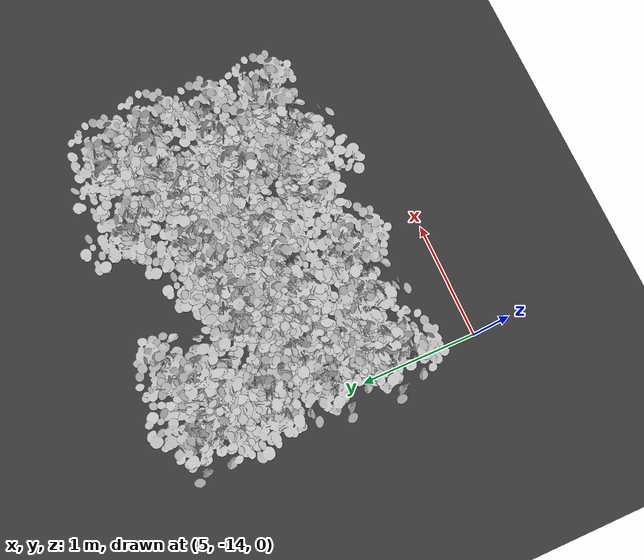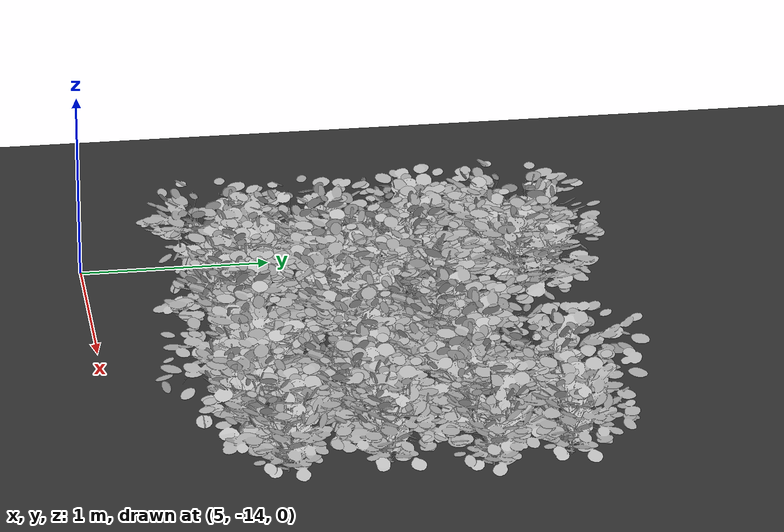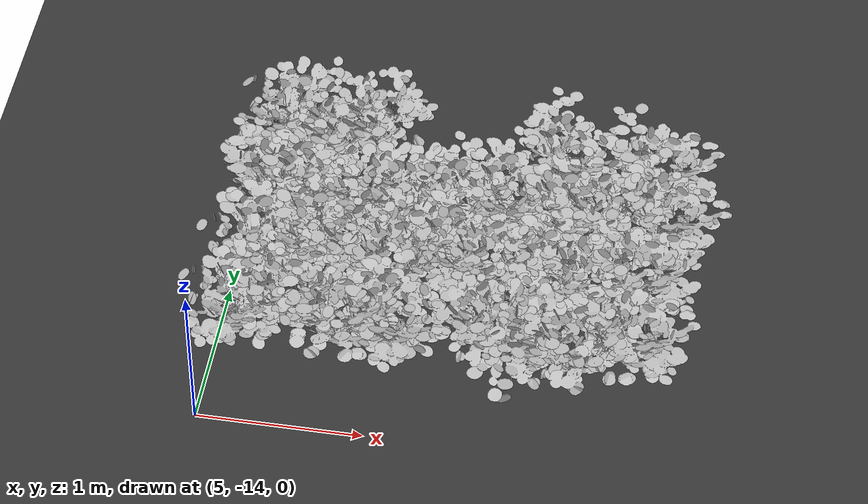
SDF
<sdf version="1.7">
 <world name="default">
  <model name="ground_plane">
   <static>1</static>
   <link name="link">
    <collision name="collision">
     <geometry><plane><normal>0 0 1</normal><size>100 100</size></plane></geometry>
     <surface>
      <contact><collide_bitmask>65535</collide_bitmask></contact>
      <friction><ode><mu>100</mu><mu2>50</mu2></ode></friction>
     </surface>
    </collision>
    <visual name="visual">
     <cast_shadows>0</cast_shadows>
     <geometry><plane><normal>0 0 1</normal><size>100 100</size></plane></geometry>
     <material>
      <ambient>0.2 0.2 0.2 1.0</ambient>
      <diffuse>0.2 0.2 0.2 1.0</diffuse>
      <specular>0.2 0.2 0.2 1.0</specular>
      <emissive>0.2 0.2 0.2 1.0</emissive>
     </material>
    </visual>
   </link>
  </model>
  <model name="ground">
   <pose>5 -0.5 0.01  3.141592654 0 0</pose>
   <static>true</static>
   <link name="body">
    <visual name="visual">
     <cast_shadows>0</cast_shadows>
     <geometry>
      <mesh><uri>file:///home/ifcosta/final_ws/src/cnn_line/worlds/models/ground.obj</uri></mesh>
     </geometry>
    </visual>
   </link>
  </model>
  <model name="plt_40017">
   <pose>5.1 -13.3 0.0129 0.0 0.0 -1.0196</pose>
   <static>true</static>
   <link name="body">
    <visual name="visual">
     <geometry>
      <mesh><uri>file:///home/ifcosta/final_ws/src/cnn_line/worlds/models/plant37.obj</uri></mesh>
     </geometry>
    </visual>
   </link>
  </model>
  <model name="plt_40018">
   <pose>5.41 -13.2 0.0167 0.0 0.0 0.37927</pose>
   <static>true</static>
   <link name="body">
    <visual name="visual">
     <geometry>
      <mesh><uri>file:///home/ifcosta/final_ws/src/cnn_line/worlds/models/plant37.obj</uri></mesh>
     </geometry>
    </visual>
   </link>
  </model>
  <model name="plt_40019">
   <pose>5.73 -13.3 0.012 0.0 0.0 0.32636</pose>
   <static>true</static>
   <link name="body">
    <visual name="visual">
     <geometry>
      <mesh><uri>file:///home/ifcosta/final_ws/src/cnn_line/worlds/models/plant37.obj</uri></mesh>
     </geometry>
    </visual>
   </link>
  </model>
  <model name="plt_40020">
   <pose>6.03 -13.3 0.0152 0.0 0.0 -0.56396</pose>
   <static>true</static>
   <link name="body">
    <visual name="visual">
     <geometry>
      <mesh><uri>file:///home/ifcosta/final_ws/src/cnn_line/worlds/models/plant37.obj</uri></mesh>
     </geometry>
    </visual>
   </link>
  </model>
  <model name="plt_40022">
   <pose>6.61 -13.2 0.0153 0.0 0.0 1.1242</pose>
   <static>true</static>
   <link name="body">
    <visual name="visual">
     <geometry>
      <mesh><uri>file:///home/ifcosta/final_ws/src/cnn_line/worlds/models/plant37.obj</uri></mesh>
     </geometry>
    </visual>
   </link>
  </model>
  <model name="plt_40023">
   <pose>6.89 -13.3 0.0155 0.0 0.0 1.9247</pose>
   <static>true</static>
   <link name="body">
    <visual name="visual">
     <geometry>
      <mesh><uri>file:///home/ifcosta/final_ws/src/cnn_line/worlds/models/plant37.obj</uri></mesh>
     </geometry>
    </visual>
   </link>
  </model>
  <model name="plt_40024">
   <pose>7.18 -13.3 0.0155 0.0 0.0 0.82469</pose>
   <static>true</static>
   <link name="body">
    <visual name="visual">
     <geometry>
      <mesh><uri>file:///home/ifcosta/final_ws/src/cnn_line/worlds/models/plant37.obj</uri></mesh>
     </geometry>
    </visual>
   </link>
  </model>
  <model name="plt_40025">
   <pose>7.49 -13.2 0.0176 0.0 0.0 -0.050242</pose>
   <static>true</static>
   <link name="body">
    <visual name="visual">
     <geometry>
      <mesh><uri>file:///home/ifcosta/final_ws/src/cnn_line/worlds/models/plant37.obj</uri></mesh>
     </geometry>
    </visual>
   </link>
  </model>
  <model name="plt_40051">
   <pose>5.14 -12.8 0.0164 0.0 0.0 -0.76544</pose>
   <static>true</static>
   <link name="body">
    <visual name="visual">
     <geometry>
      <mesh><uri>file:///home/ifcosta/final_ws/src/cnn_line/worlds/models/plant37.obj</uri></mesh>
     </geometry>
    </visual>
   </link>
  </model>
  <model name="plt_40052">
   <pose>5.42 -12.7 0.0171 0.0 0.0 -1.0659</pose>
   <static>true</static>
   <link name="body">
    <visual name="visual">
     <geometry>
      <mesh><uri>file:///home/ifcosta/final_ws/src/cnn_line/worlds/models/plant37.obj</uri></mesh>
     </geometry>
    </visual>
   </link>
  </model>
  <model name="plt_40053">
   <pose>5.77 -12.7 0.0141 0.0 0.0 1.11</pose>
   <static>true</static>
   <link name="body">
    <visual name="visual">
     <geometry>
      <mesh><uri>file:///home/ifcosta/final_ws/src/cnn_line/worlds/models/plant37.obj</uri></mesh>
     </geometry>
    </visual>
   </link>
  </model>
  <model name="plt_40054">
   <pose>6.01 -12.8 0.0155 0.0 0.0 0.67032</pose>
   <static>true</static>
   <link name="body">
    <visual name="visual">
     <geometry>
      <mesh><uri>file:///home/ifcosta/final_ws/src/cnn_line/worlds/models/plant37.obj</uri></mesh>
     </geometry>
    </visual>
   </link>
  </model>
  <model name="plt_40055">
   <pose>6.29 -12.7 0.015 0.0 0.0 -0.73969</pose>
   <static>true</static>
   <link name="body">
    <visual name="visual">
     <geometry>
      <mesh><uri>file:///home/ifcosta/final_ws/src/cnn_line/worlds/models/plant37.obj</uri></mesh>
     </geometry>
    </visual>
   </link>
  </model>
  <model name="plt_40056">
   <pose>6.58 -12.7 0.0156 0.0 0.0 0.72047</pose>
   <static>true</static>
   <link name="body">
    <visual name="visual">
     <geometry>
      <mesh><uri>file:///home/ifcosta/final_ws/src/cnn_line/worlds/models/plant37.obj</uri></mesh>
     </geometry>
    </visual>
   </link>
  </model>
  <model name="plt_40057">
   <pose>6.9 -12.8 0.0161 0.0 0.0 -0.61179</pose>
   <static>true</static>
   <link name="body">
    <visual name="visual">
     <geometry>
      <mesh><uri>file:///home/ifcosta/final_ws/src/cnn_line/worlds/models/plant37.obj</uri></mesh>
     </geometry>
    </visual>
   </link>
  </model>
  <model name="plt_40058">
   <pose>7.17 -12.8 0.016 0.0 0.0 -0.096596</pose>
   <static>true</static>
   <link name="body">
    <visual name="visual">
     <geometry>
      <mesh><uri>file:///home/ifcosta/final_ws/src/cnn_line/worlds/models/plant37.obj</uri></mesh>
     </geometry>
    </visual>
   </link>
  </model>
  <model name="plt_40059">
   <pose>7.47 -12.7 0.0152 0.0 0.0 0.22412</pose>
   <static>true</static>
   <link name="body">
    <visual name="visual">
     <geometry>
      <mesh><uri>file:///home/ifcosta/final_ws/src/cnn_line/worlds/models/plant37.obj</uri></mesh>
     </geometry>
    </visual>
   </link>
  </model>
  <model name="plt_40085">
   <pose>5.14 -12.3 0.0163 0.0 0.0 -0.0048758</pose>
   <static>true</static>
   <link name="body">
    <visual name="visual">
     <geometry>
      <mesh><uri>file:///home/ifcosta/final_ws/src/cnn_line/worlds/models/plant37.obj</uri></mesh>
     </geometry>
    </visual>
   </link>
  </model>
  <model name="plt_40086">
   <pose>5.33 -12.3 0.0139 0.0 0.0 -0.49202</pose>
   <static>true</static>
   <link name="body">
    <visual name="visual">
     <geometry>
      <mesh><uri>file:///home/ifcosta/final_ws/src/cnn_line/worlds/models/plant37.obj</uri></mesh>
     </geometry>
    </visual>
   </link>
  </model>
  <model name="plt_40087">
   <pose>5.74 -12.3 0.0161 0.0 0.0 -1.7032</pose>
   <static>true</static>
   <link name="body">
    <visual name="visual">
     <geometry>
      <mesh><uri>file:///home/ifcosta/final_ws/src/cnn_line/worlds/models/plant37.obj</uri></mesh>
     </geometry>
    </visual>
   </link>
  </model>
  <model name="plt_40088">
   <pose>5.98 -12.3 0.0138 0.0 0.0 -1.5017</pose>
   <static>true</static>
   <link name="body">
    <visual name="visual">
     <geometry>
      <mesh><uri>file:///home/ifcosta/final_ws/src/cnn_line/worlds/models/plant37.obj</uri></mesh>
     </geometry>
    </visual>
   </link>
  </model>
  <model name="plt_40089">
   <pose>6.28 -12.3 0.012 0.0 0.0 -0.56995</pose>
   <static>true</static>
   <link name="body">
    <visual name="visual">
     <geometry>
      <mesh><uri>file:///home/ifcosta/final_ws/src/cnn_line/worlds/models/plant37.obj</uri></mesh>
     </geometry>
    </visual>
   </link>
  </model>
  <model name="plt_40090">
   <pose>6.55 -12.2 0.0124 0.0 0.0 -0.75555</pose>
   <static>true</static>
   <link name="body">
    <visual name="visual">
     <geometry>
      <mesh><uri>file:///home/ifcosta/final_ws/src/cnn_line/worlds/models/plant37.obj</uri></mesh>
     </geometry>
    </visual>
   </link>
  </model>
  <model name="plt_40091">
   <pose>6.91 -12.3 0.0171 0.0 0.0 -0.94452</pose>
   <static>true</static>
   <link name="body">
    <visual name="visual">
     <geometry>
      <mesh><uri>file:///home/ifcosta/final_ws/src/cnn_line/worlds/models/plant37.obj</uri></mesh>
     </geometry>
    </visual>
   </link>
  </model>
  <model name="plt_40092">
   <pose>7.19 -12.2 0.016 0.0 0.0 0.98304</pose>
   <static>true</static>
   <link name="body">
    <visual name="visual">
     <geometry>
      <mesh><uri>file:///home/ifcosta/final_ws/src/cnn_line/worlds/models/plant37.obj</uri></mesh>
     </geometry>
    </visual>
   </link>
  </model>
  <model name="plt_40093">
   <pose>7.56 -12.2 0.0167 0.0 0.0 -0.25359</pose>
   <static>true</static>
   <link name="body">
    <visual name="visual">
     <geometry>
      <mesh><uri>file:///home/ifcosta/final_ws/src/cnn_line/worlds/models/plant37.obj</uri></mesh>
     </geometry>
    </visual>
   </link>
  </model>
  <model name="plt_40119">
   <pose>5.1 -11.7 0.017 0.0 0.0 -1.2805</pose>
   <static>true</static>
   <link name="body">
    <visual name="visual">
     <geometry>
      <mesh><uri>file:///home/ifcosta/final_ws/src/cnn_line/worlds/models/plant37.obj</uri></mesh>
     </geometry>
    </visual>
   </link>
  </model>
  <model name="plt_40120">
   <pose>5.44 -11.8 0.0122 0.0 0.0 1.3729</pose>
   <static>true</static>
   <link name="body">
    <visual name="visual">
     <geometry>
      <mesh><uri>file:///home/ifcosta/final_ws/src/cnn_line/worlds/models/plant37.obj</uri></mesh>
     </geometry>
    </visual>
   </link>
  </model>
  <model name="plt_40121">
   <pose>5.67 -11.7 0.0162 0.0 0.0 1.4806</pose>
   <static>true</static>
   <link name="body">
    <visual name="visual">
     <geometry>
      <mesh><uri>file:///home/ifcosta/final_ws/src/cnn_line/worlds/models/plant37.obj</uri></mesh>
     </geometry>
    </visual>
   </link>
  </model>
  <model name="plt_40125">
   <pose>6.88 -11.8 0.0126 0.0 0.0 -0.44149</pose>
   <static>true</static>
   <link name="body">
    <visual name="visual">
     <geometry>
      <mesh><uri>file:///home/ifcosta/final_ws/src/cnn_line/worlds/models/plant37.obj</uri></mesh>
     </geometry>
    </visual>
   </link>
  </model>
  <model name="plt_40127">
   <pose>7.48 -11.8 0.0137 0.0 0.0 0.060397</pose>
   <static>true</static>
   <link name="body">
    <visual name="visual">
     <geometry>
      <mesh><uri>file:///home/ifcosta/final_ws/src/cnn_line/worlds/models/plant37.obj</uri></mesh>
     </geometry>
    </visual>
   </link>
  </model>
 </world>
</sdf>
